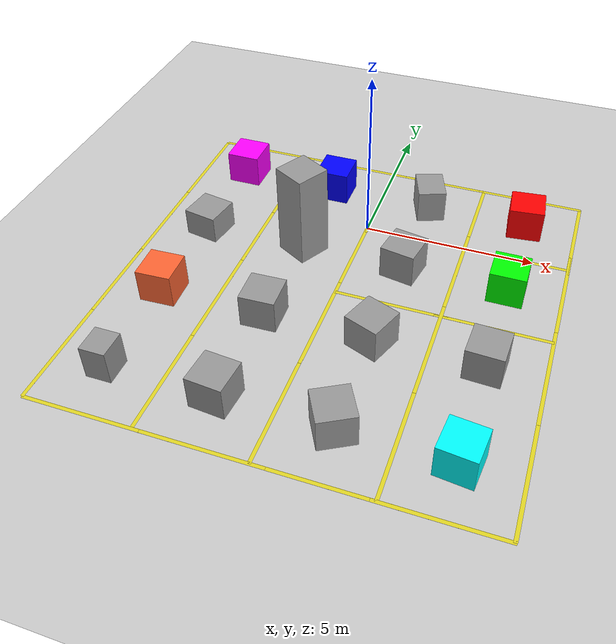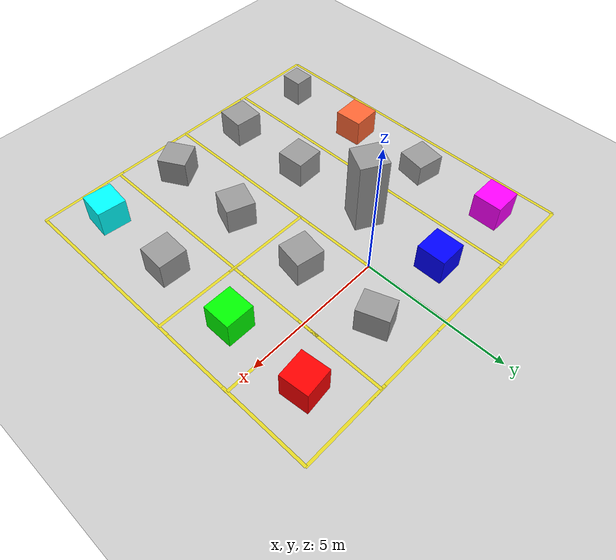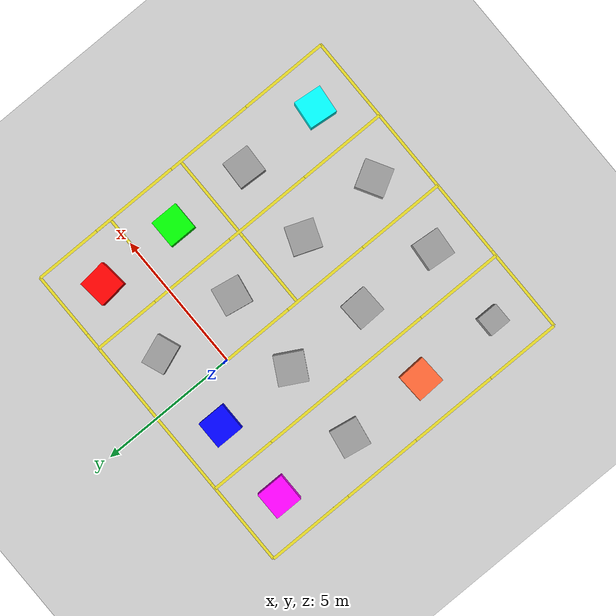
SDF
<sdf version="1.7">
 <world name="default">
  <light name="sun" type="directional">
   <pose>0 0 10 0 -0 0</pose>
   <diffuse>0.8 0.8 0.8 1</diffuse>
   <specular>0.2 0.2 0.2 1</specular>
   <attenuation>
    <range>1000</range>
    <constant>0.9</constant>
    <linear>0.01</linear>
    <quadratic>0.001</quadratic>
   </attenuation>
   <direction>-0.5 0.1 -0.9</direction>
   <spot><inner_angle>0</inner_angle><outer_angle>0</outer_angle><falloff>0</falloff></spot>
  </light>
  <model name="ground_plane">
   <static>1</static>
   <link name="link">
    <collision name="collision">
     <geometry><plane><normal>0 0 1</normal><size>100 100</size></plane></geometry>
     <surface>
      <contact><collide_bitmask>65535</collide_bitmask></contact>
      <friction><ode><mu>100</mu><mu2>50</mu2></ode></friction>
     </surface>
    </collision>
    <visual name="visual">
     <cast_shadows>0</cast_shadows>
     <geometry><plane><normal>0 0 1</normal><size>100 100</size></plane></geometry>
     <material>
      <script><uri>file://media/materials/scripts/gazebo.material</uri><name>Gazebo/Grey</name></script>
     </material>
    </visual>
   </link>
  </model>
  <gravity>0 0 -9.8</gravity>
  <magnetic_field>6e-06 2.3e-05 -4.2e-05</magnetic_field>
  <atmosphere type="adiabatic"/>
  <physics type="ode">
   <max_step_size>0.001</max_step_size>
   <real_time_factor>1</real_time_factor>
   <real_time_update_rate>1000</real_time_update_rate>
  </physics>
  <scene><ambient>0.4 0.4 0.4 1</ambient><background>0.7 0.7 0.7 1</background><shadows>1</shadows></scene>
  <spherical_coordinates>
   <surface_model>EARTH_WGS84</surface_model>
   <latitude_deg>0</latitude_deg>
   <longitude_deg>0</longitude_deg>
   <elevation>0</elevation>
   <heading_deg>0</heading_deg>
  </spherical_coordinates>
  <model name="C4">
   <link name="link_4">
    <inertial>
     <mass>100</mass>
     <inertia>
      <ixx>0.166667</ixx>
      <ixy>0</ixy>
      <ixz>0</ixz>
      <iyy>0.166667</iyy>
      <iyz>0</iyz>
      <izz>0.166667</izz>
     </inertia>
    </inertial>
    <visual name="visual">
     <geometry><box><size>0.999999 1 1</size></box></geometry>
     <material>
      <lighting>1</lighting>
      <script><uri>file://media/materials/scripts/gazebo.material</uri><name>Gazebo/Grey</name></script>
      <shader type="pixel"><normal_map>__default__</normal_map></shader>
      <ambient>0.3 0.3 0.3 1</ambient>
      <diffuse>0.7 0.7 0.7 1</diffuse>
      <specular>0.01 0.01 0.01 1</specular>
      <emissive>0 0 0 1</emissive>
     </material>
    </visual>
    <collision name="collision">
     <geometry><box><size>0.999999 1 1</size></box></geometry>
     <surface>
      <friction>
       <ode><mu>1</mu><mu2>1</mu2><fdir1>0 0 0</fdir1><slip1>0</slip1><slip2>0</slip2></ode>
       <torsional>
        <coefficient>1</coefficient>
        <patch_radius>0</patch_radius>
        <surface_radius>0</surface_radius>
        <use_patch_radius>1</use_patch_radius>
        <ode><slip>0</slip></ode>
       </torsional>
      </friction>
      <bounce><restitution_coefficient>0</restitution_coefficient><threshold>1e+06</threshold></bounce>
      <contact>
       <collide_without_contact>0</collide_without_contact>
       <collide_without_contact_bitmask>1</collide_without_contact_bitmask>
       <collide_bitmask>1</collide_bitmask>
       <ode>
        <soft_cfm>0</soft_cfm>
        <soft_erp>0.2</soft_erp>
        <kp>1e+13</kp>
        <kd>1</kd>
        <max_vel>0.01</max_vel>
        <min_depth>0</min_depth>
       </ode>
       <bullet>
        <split_impulse>1</split_impulse>
        <split_impulse_penetration_threshold>-0.01</split_impulse_penetration_threshold>
        <soft_cfm>0</soft_cfm>
        <soft_erp>0.2</soft_erp>
        <kp>1e+13</kp>
        <kd>1</kd>
       </bullet>
      </contact>
     </surface>
    </collision>
   </link>
   <static>0</static>
   <pose>-1.5 -7.5 0.499995 1e-05 0 -0.085177</pose>
  </model>
  <model name="D1">
   <link name="link_4">
    <inertial>
     <mass>100</mass>
     <inertia>
      <ixx>0.166667</ixx>
      <ixy>0</ixy>
      <ixz>0</ixz>
      <iyy>0.166667</iyy>
      <iyz>0</iyz>
      <izz>0.166667</izz>
     </inertia>
    </inertial>
    <visual name="visual">
     <geometry><box><size>0.999998 1 1</size></box></geometry>
     <material>
      <lighting>1</lighting>
      <script><uri>file://media/materials/scripts/gazebo.material</uri><name>Gazebo/Grey</name></script>
      <shader type="pixel"><normal_map>__default__</normal_map></shader>
      <ambient>1 0 1 0</ambient>
      <diffuse>0.7 0.7 0.7 1</diffuse>
      <specular>0.01 0.01 0.01 1</specular>
      <emissive>0 0 0 1</emissive>
     </material>
    </visual>
    <collision name="collision">
     <geometry><box><size>0.999998 1 1</size></box></geometry>
     <surface>
      <friction>
       <ode><mu>1</mu><mu2>1</mu2><fdir1>0 0 0</fdir1><slip1>0</slip1><slip2>0</slip2></ode>
       <torsional>
        <coefficient>1</coefficient>
        <patch_radius>0</patch_radius>
        <surface_radius>0</surface_radius>
        <use_patch_radius>1</use_patch_radius>
        <ode><slip>0</slip></ode>
       </torsional>
      </friction>
      <bounce><restitution_coefficient>0</restitution_coefficient><threshold>1e+06</threshold></bounce>
      <contact>
       <collide_without_contact>0</collide_without_contact>
       <collide_without_contact_bitmask>1</collide_without_contact_bitmask>
       <collide_bitmask>1</collide_bitmask>
       <ode>
        <soft_cfm>0</soft_cfm>
        <soft_erp>0.2</soft_erp>
        <kp>1e+13</kp>
        <kd>1</kd>
        <max_vel>0.01</max_vel>
        <min_depth>0</min_depth>
       </ode>
       <bullet>
        <split_impulse>1</split_impulse>
        <split_impulse_penetration_threshold>-0.01</split_impulse_penetration_threshold>
        <soft_cfm>0</soft_cfm>
        <soft_erp>0.2</soft_erp>
        <kp>1e+13</kp>
        <kd>1</kd>
       </bullet>
      </contact>
     </surface>
    </collision>
   </link>
   <static>0</static>
   <pose>-4.5 1.5 0.5 0 -0 0</pose>
  </model>
  <model name="D2">
   <link name="link_4">
    <inertial>
     <mass>100</mass>
     <inertia>
      <ixx>0.166667</ixx>
      <ixy>0</ixy>
      <ixz>0</ixz>
      <iyy>0.166667</iyy>
      <iyz>0</iyz>
      <izz>0.166667</izz>
     </inertia>
    </inertial>
    <visual name="visual">
     <geometry><box><size>0.999996 1 0.999998</size></box></geometry>
     <material>
      <lighting>1</lighting>
      <script><uri>file://media/materials/scripts/gazebo.material</uri><name>Gazebo/Grey</name></script>
      <shader type="pixel"><normal_map>__default__</normal_map></shader>
      <ambient>0.3 0.3 0.3 1</ambient>
      <diffuse>0.7 0.7 0.7 1</diffuse>
      <specular>0.01 0.01 0.01 1</specular>
      <emissive>0 0 0 1</emissive>
     </material>
    </visual>
    <collision name="collision">
     <geometry><box><size>0.999996 1 0.999998</size></box></geometry>
     <surface>
      <friction>
       <ode><mu>1</mu><mu2>1</mu2><fdir1>0 0 0</fdir1><slip1>0</slip1><slip2>0</slip2></ode>
       <torsional>
        <coefficient>1</coefficient>
        <patch_radius>0</patch_radius>
        <surface_radius>0</surface_radius>
        <use_patch_radius>1</use_patch_radius>
        <ode><slip>0</slip></ode>
       </torsional>
      </friction>
      <bounce><restitution_coefficient>0</restitution_coefficient><threshold>1e+06</threshold></bounce>
      <contact>
       <collide_without_contact>0</collide_without_contact>
       <collide_without_contact_bitmask>1</collide_without_contact_bitmask>
       <collide_bitmask>1</collide_bitmask>
       <ode>
        <soft_cfm>0</soft_cfm>
        <soft_erp>0.2</soft_erp>
        <kp>1e+13</kp>
        <kd>1</kd>
        <max_vel>0.01</max_vel>
        <min_depth>0</min_depth>
       </ode>
       <bullet>
        <split_impulse>1</split_impulse>
        <split_impulse_penetration_threshold>-0.01</split_impulse_penetration_threshold>
        <soft_cfm>0</soft_cfm>
        <soft_erp>0.2</soft_erp>
        <kp>1e+13</kp>
        <kd>1</kd>
       </bullet>
      </contact>
     </surface>
    </collision>
   </link>
   <static>0</static>
   <pose>-4.5 -1.5 0.310137 0 0 -0.174068</pose>
  </model>
  <model name="C3">
   <link name="link_4">
    <inertial>
     <mass>100</mass>
     <inertia>
      <ixx>0.166667</ixx>
      <ixy>0</ixy>
      <ixz>0</ixz>
      <iyy>0.166667</iyy>
      <iyz>0</iyz>
      <izz>0.166667</izz>
     </inertia>
    </inertial>
    <visual name="visual">
     <geometry><box><size>1 1 1</size></box></geometry>
     <material>
      <lighting>1</lighting>
      <script><uri>file://media/materials/scripts/gazebo.material</uri><name>Gazebo/Grey</name></script>
      <shader type="pixel"><normal_map>__default__</normal_map></shader>
      <ambient>0.3 0.3 0.3 1</ambient>
      <diffuse>0.7 0.7 0.7 1</diffuse>
      <specular>0.01 0.01 0.01 1</specular>
      <emissive>0 0 0 1</emissive>
     </material>
    </visual>
    <collision name="collision">
     <geometry><box><size>1 1 1</size></box></geometry>
     <surface>
      <friction>
       <ode><mu>1</mu><mu2>1</mu2><fdir1>0 0 0</fdir1><slip1>0</slip1><slip2>0</slip2></ode>
       <torsional>
        <coefficient>1</coefficient>
        <patch_radius>0</patch_radius>
        <surface_radius>0</surface_radius>
        <use_patch_radius>1</use_patch_radius>
        <ode><slip>0</slip></ode>
       </torsional>
      </friction>
      <bounce><restitution_coefficient>0</restitution_coefficient><threshold>1e+06</threshold></bounce>
      <contact>
       <collide_without_contact>0</collide_without_contact>
       <collide_without_contact_bitmask>1</collide_without_contact_bitmask>
       <collide_bitmask>1</collide_bitmask>
       <ode>
        <soft_cfm>0</soft_cfm>
        <soft_erp>0.2</soft_erp>
        <kp>1e+13</kp>
        <kd>1</kd>
        <max_vel>0.01</max_vel>
        <min_depth>0</min_depth>
       </ode>
       <bullet>
        <split_impulse>1</split_impulse>
        <split_impulse_penetration_threshold>-0.01</split_impulse_penetration_threshold>
        <soft_cfm>0</soft_cfm>
        <soft_erp>0.2</soft_erp>
        <kp>1e+13</kp>
        <kd>1</kd>
       </bullet>
      </contact>
     </surface>
    </collision>
   </link>
   <static>0</static>
   <pose>-1.5 -4.5 0.499995 8e-06 -0 0.03295</pose>
  </model>
  <model name="yellow line">
   <static>1</static>
   <link name="link_ground">
    <collision name="collision">
     <geometry><plane><normal>0 0 1</normal><size>0.1 3.2</size></plane></geometry>
     <surface><friction><ode><mu>100</mu><mu2>50</mu2></ode></friction></surface>
    </collision>
    <visual name="visual_ground">
     <cast_shadows>0</cast_shadows>
     <geometry><plane><normal>0 0 1</normal><size>0.1 3.2</size></plane></geometry>
     <material>
      <script><uri>file://media/materials/scripts/gazebo.material</uri><name>Gazebo/Yellow</name></script>
     </material>
    </visual>
   </link>
   <pose>-6 1.4 0.01 0 -0 0</pose>
  </model>
  <model name="yellow line_0">
   <static>1</static>
   <link name="link_ground">
    <collision name="collision">
     <geometry><plane><normal>0 0 1</normal><size>0.1 3.2</size></plane></geometry>
     <surface><friction><ode><mu>100</mu><mu2>50</mu2></ode></friction></surface>
    </collision>
    <visual name="visual_ground">
     <cast_shadows>0</cast_shadows>
     <geometry><plane><normal>0 0 1</normal><size>0.1 3.2</size></plane></geometry>
     <material>
      <script><uri>file://media/materials/scripts/gazebo.material</uri><name>Gazebo/Yellow</name></script>
     </material>
    </visual>
   </link>
   <pose>0 -1 0.01 0 -0 0</pose>
  </model>
  <model name="yellow line_1">
   <static>1</static>
   <link name="link_ground">
    <collision name="collision">
     <geometry><plane><normal>0 0 1</normal><size>0.1 3.2</size></plane></geometry>
     <surface><friction><ode><mu>100</mu><mu2>50</mu2></ode></friction></surface>
    </collision>
    <visual name="visual_ground">
     <cast_shadows>0</cast_shadows>
     <geometry><plane><normal>0 0 1</normal><size>0.1 3.2</size></plane></geometry>
     <material>
      <script><uri>file://media/materials/scripts/gazebo.material</uri><name>Gazebo/Yellow</name></script>
     </material>
    </visual>
   </link>
   <pose>-3 -1 0.01 0 -0 0</pose>
  </model>
  <model name="yellow line_2">
   <static>1</static>
   <link name="link_ground">
    <collision name="collision">
     <geometry><plane><normal>0 0 1</normal><size>0.1 3.2</size></plane></geometry>
     <surface><friction><ode><mu>100</mu><mu2>50</mu2></ode></friction></surface>
    </collision>
    <visual name="visual_ground">
     <cast_shadows>0</cast_shadows>
     <geometry><plane><normal>0 0 1</normal><size>0.1 3.2</size></plane></geometry>
     <material>
      <script><uri>file://media/materials/scripts/gazebo.material</uri><name>Gazebo/Yellow</name></script>
     </material>
    </visual>
   </link>
   <pose>3 -1 0.01 0 -0 0</pose>
  </model>
  <model name="yellow line_3">
   <static>1</static>
   <link name="link_ground">
    <collision name="collision">
     <geometry><plane><normal>0 0 1</normal><size>0.1 3.2</size></plane></geometry>
     <surface><friction><ode><mu>100</mu><mu2>50</mu2></ode></friction></surface>
    </collision>
    <visual name="visual_ground">
     <cast_shadows>0</cast_shadows>
     <geometry><plane><normal>0 0 1</normal><size>0.1 3.2</size></plane></geometry>
     <material>
      <script><uri>file://media/materials/scripts/gazebo.material</uri><name>Gazebo/Yellow</name></script>
     </material>
    </visual>
   </link>
   <pose>6.01526 -1 0.01 0 -0 0</pose>
  </model>
  <model name="yellow line_4">
   <static>1</static>
   <link name="link_ground">
    <collision name="collision">
     <geometry><plane><normal>0 0 1</normal><size>0.1 3.2</size></plane></geometry>
     <surface><friction><ode><mu>100</mu><mu2>50</mu2></ode></friction></surface>
    </collision>
    <visual name="visual_ground">
     <cast_shadows>0</cast_shadows>
     <geometry><plane><normal>0 0 1</normal><size>0.1 3.2</size></plane></geometry>
     <material>
      <script><uri>file://media/materials/scripts/gazebo.material</uri><name>Gazebo/Yellow</name></script>
     </material>
    </visual>
   </link>
   <pose>6.01004 -4.2 0.01 0 -0 0</pose>
  </model>
  <model name="yellow line_5">
   <static>1</static>
   <link name="link_ground">
    <collision name="collision">
     <geometry><plane><normal>0 0 1</normal><size>0.1 3.2</size></plane></geometry>
     <surface><friction><ode><mu>100</mu><mu2>50</mu2></ode></friction></surface>
    </collision>
    <visual name="visual_ground">
     <cast_shadows>0</cast_shadows>
     <geometry><plane><normal>0 0 1</normal><size>0.1 3.2</size></plane></geometry>
     <material>
      <script><uri>file://media/materials/scripts/gazebo.material</uri><name>Gazebo/Yellow</name></script>
     </material>
    </visual>
   </link>
   <pose>3 -4.2 0.01 0 -0 0</pose>
  </model>
  <model name="yellow line_6">
   <static>1</static>
   <link name="link_ground">
    <collision name="collision">
     <geometry><plane><normal>0 0 1</normal><size>0.1 3.2</size></plane></geometry>
     <surface><friction><ode><mu>100</mu><mu2>50</mu2></ode></friction></surface>
    </collision>
    <visual name="visual_ground">
     <cast_shadows>0</cast_shadows>
     <geometry><plane><normal>0 0 1</normal><size>0.1 3.2</size></plane></geometry>
     <material>
      <script><uri>file://media/materials/scripts/gazebo.material</uri><name>Gazebo/Yellow</name></script>
     </material>
    </visual>
   </link>
   <pose>0 -4.2 0.01 0 -0 0</pose>
  </model>
  <model name="yellow line_7">
   <static>1</static>
   <link name="link_ground">
    <collision name="collision">
     <geometry><plane><normal>0 0 1</normal><size>0.1 3.2</size></plane></geometry>
     <surface><friction><ode><mu>100</mu><mu2>50</mu2></ode></friction></surface>
    </collision>
    <visual name="visual_ground">
     <cast_shadows>0</cast_shadows>
     <geometry><plane><normal>0 0 1</normal><size>0.1 3.2</size></plane></geometry>
     <material>
      <script><uri>file://media/materials/scripts/gazebo.material</uri><name>Gazebo/Yellow</name></script>
     </material>
    </visual>
   </link>
   <pose>-3 -4.2 0.01 0 -0 0</pose>
  </model>
  <model name="yellow line_8">
   <static>1</static>
   <link name="link_ground">
    <collision name="collision">
     <geometry><plane><normal>0 0 1</normal><size>0.1 3.2</size></plane></geometry>
     <surface><friction><ode><mu>100</mu><mu2>50</mu2></ode></friction></surface>
    </collision>
    <visual name="visual_ground">
     <cast_shadows>0</cast_shadows>
     <geometry><plane><normal>0 0 1</normal><size>0.1 3.2</size></plane></geometry>
     <material>
      <script><uri>file://media/materials/scripts/gazebo.material</uri><name>Gazebo/Yellow</name></script>
     </material>
    </visual>
   </link>
   <pose>-6 -4.7 0.01 0 -0 0</pose>
  </model>
  <model name="yellow line_9">
   <static>1</static>
   <link name="link_ground">
    <collision name="collision">
     <geometry><plane><normal>0 0 1</normal><size>0.1 3.2</size></plane></geometry>
     <surface><friction><ode><mu>100</mu><mu2>50</mu2></ode></friction></surface>
    </collision>
    <visual name="visual_ground">
     <cast_shadows>0</cast_shadows>
     <geometry><plane><normal>0 0 1</normal><size>0.1 3.2</size></plane></geometry>
     <material>
      <script><uri>file://media/materials/scripts/gazebo.material</uri><name>Gazebo/Yellow</name></script>
     </material>
    </visual>
   </link>
   <pose>6.01227 -7.4 0.01 0 -0 0</pose>
  </model>
  <model name="yellow line_10">
   <static>1</static>
   <link name="link_ground">
    <collision name="collision">
     <geometry><plane><normal>0 0 1</normal><size>0.1 3.2</size></plane></geometry>
     <surface><friction><ode><mu>100</mu><mu2>50</mu2></ode></friction></surface>
    </collision>
    <visual name="visual_ground">
     <cast_shadows>0</cast_shadows>
     <geometry><plane><normal>0 0 1</normal><size>0.1 3.2</size></plane></geometry>
     <material>
      <script><uri>file://media/materials/scripts/gazebo.material</uri><name>Gazebo/Yellow</name></script>
     </material>
    </visual>
   </link>
   <pose>3 -7.4 0.01 0 -0 0</pose>
  </model>
  <model name="yellow line_11">
   <static>1</static>
   <link name="link_ground">
    <collision name="collision">
     <geometry><plane><normal>0 0 1</normal><size>0.1 3.2</size></plane></geometry>
     <surface><friction><ode><mu>100</mu><mu2>50</mu2></ode></friction></surface>
    </collision>
    <visual name="visual_ground">
     <cast_shadows>0</cast_shadows>
     <geometry><plane><normal>0 0 1</normal><size>0.1 3.2</size></plane></geometry>
     <material>
      <script><uri>file://media/materials/scripts/gazebo.material</uri><name>Gazebo/Yellow</name></script>
     </material>
    </visual>
   </link>
   <pose>0 -7.4 0.01 0 -0 0</pose>
  </model>
  <model name="yellow line_12">
   <static>1</static>
   <link name="link_ground">
    <collision name="collision">
     <geometry><plane><normal>0 0 1</normal><size>0.1 3.2</size></plane></geometry>
     <surface><friction><ode><mu>100</mu><mu2>50</mu2></ode></friction></surface>
    </collision>
    <visual name="visual_ground">
     <cast_shadows>0</cast_shadows>
     <geometry><plane><normal>0 0 1</normal><size>0.1 3.2</size></plane></geometry>
     <material>
      <script><uri>file://media/materials/scripts/gazebo.material</uri><name>Gazebo/Yellow</name></script>
     </material>
    </visual>
   </link>
   <pose>-3 -7.4 0.01 0 -0 0</pose>
  </model>
  <model name="yellow line_13">
   <static>1</static>
   <link name="link_ground">
    <collision name="collision">
     <geometry><plane><normal>0 0 1</normal><size>0.1 3.2</size></plane></geometry>
     <surface><friction><ode><mu>100</mu><mu2>50</mu2></ode></friction></surface>
    </collision>
    <visual name="visual_ground">
     <cast_shadows>0</cast_shadows>
     <geometry><plane><normal>0 0 1</normal><size>0.1 3.2</size></plane></geometry>
     <material>
      <script><uri>file://media/materials/scripts/gazebo.material</uri><name>Gazebo/Yellow</name></script>
     </material>
    </visual>
   </link>
   <pose>-6 -7.4 0.01 0 -0 0</pose>
  </model>
  <model name="yellow line_14">
   <static>1</static>
   <link name="link_ground">
    <collision name="collision">
     <geometry><plane><normal>0 0 1</normal><size>0.1 3.2</size></plane></geometry>
     <surface><friction><ode><mu>100</mu><mu2>50</mu2></ode></friction></surface>
    </collision>
    <visual name="visual_ground">
     <cast_shadows>0</cast_shadows>
     <geometry><plane><normal>0 0 1</normal><size>0.1 3.2</size></plane></geometry>
     <material>
      <script><uri>file://media/materials/scripts/gazebo.material</uri><name>Gazebo/Yellow</name></script>
     </material>
    </visual>
   </link>
   <pose>-6 -1.7 0.01 0 -0 0</pose>
  </model>
  <model name="yellow line_15">
   <static>1</static>
   <link name="link_ground">
    <collision name="collision">
     <geometry><plane><normal>0 0 1</normal><size>0.1 3.2</size></plane></geometry>
     <surface><friction><ode><mu>100</mu><mu2>50</mu2></ode></friction></surface>
    </collision>
    <visual name="visual_ground">
     <cast_shadows>0</cast_shadows>
     <geometry><plane><normal>0 0 1</normal><size>0.1 3.2</size></plane></geometry>
     <material>
      <script><uri>file://media/materials/scripts/gazebo.material</uri><name>Gazebo/Yellow</name></script>
     </material>
    </visual>
   </link>
   <pose>-3 1.4 0.01 0 -0 0</pose>
  </model>
  <model name="yellow line_16">
   <static>1</static>
   <link name="link_ground">
    <collision name="collision">
     <geometry><plane><normal>0 0 1</normal><size>0.1 3.2</size></plane></geometry>
     <surface><friction><ode><mu>100</mu><mu2>50</mu2></ode></friction></surface>
    </collision>
    <visual name="visual_ground">
     <cast_shadows>0</cast_shadows>
     <geometry><plane><normal>0 0 1</normal><size>0.1 3.2</size></plane></geometry>
     <material>
      <script><uri>file://media/materials/scripts/gazebo.material</uri><name>Gazebo/Yellow</name></script>
     </material>
    </visual>
   </link>
   <pose>0 1.4 0.01 0 -0 0</pose>
  </model>
  <model name="yellow line_17">
   <static>1</static>
   <link name="link_ground">
    <collision name="collision">
     <geometry><plane><normal>0 0 1</normal><size>0.1 3.2</size></plane></geometry>
     <surface><friction><ode><mu>100</mu><mu2>50</mu2></ode></friction></surface>
    </collision>
    <visual name="visual_ground">
     <cast_shadows>0</cast_shadows>
     <geometry><plane><normal>0 0 1</normal><size>0.1 3.2</size></plane></geometry>
     <material>
      <script><uri>file://media/materials/scripts/gazebo.material</uri><name>Gazebo/Yellow</name></script>
     </material>
    </visual>
   </link>
   <pose>3 1.4 0.01 0 -0 0</pose>
  </model>
  <model name="yellow line_18">
   <static>1</static>
   <link name="link_ground">
    <collision name="collision">
     <geometry><plane><normal>0 0 1</normal><size>0.1 3.2</size></plane></geometry>
     <surface><friction><ode><mu>100</mu><mu2>50</mu2></ode></friction></surface>
    </collision>
    <visual name="visual_ground">
     <cast_shadows>0</cast_shadows>
     <geometry><plane><normal>0 0 1</normal><size>0.1 3.2</size></plane></geometry>
     <material>
      <script><uri>file://media/materials/scripts/gazebo.material</uri><name>Gazebo/Yellow</name></script>
     </material>
    </visual>
   </link>
   <pose>6.01258 1.40322 0.01 0 -0 0</pose>
  </model>
  <model name="yellow line_19">
   <static>1</static>
   <link name="link_ground">
    <collision name="collision">
     <geometry><plane><normal>0 0 1</normal><size>0.1 3.2</size></plane></geometry>
     <surface><friction><ode><mu>100</mu><mu2>50</mu2></ode></friction></surface>
    </collision>
    <visual name="visual_ground">
     <cast_shadows>0</cast_shadows>
     <geometry><plane><normal>0 0 1</normal><size>0.1 3.2</size></plane></geometry>
     <material>
      <script><uri>file://media/materials/scripts/gazebo.material</uri><name>Gazebo/Yellow</name></script>
     </material>
    </visual>
   </link>
   <pose>-4.4 -9 0.01 0 -0 1.571</pose>
  </model>
  <model name="yellow line_20">
   <static>1</static>
   <link name="link_ground">
    <collision name="collision">
     <geometry><plane><normal>0 0 1</normal><size>0.1 3.2</size></plane></geometry>
     <surface><friction><ode><mu>100</mu><mu2>50</mu2></ode></friction></surface>
    </collision>
    <visual name="visual_ground">
     <cast_shadows>0</cast_shadows>
     <geometry><plane><normal>0 0 1</normal><size>0.1 3.2</size></plane></geometry>
     <material>
      <script><uri>file://media/materials/scripts/gazebo.material</uri><name>Gazebo/Yellow</name></script>
     </material>
    </visual>
   </link>
   <pose>-1.2 -9 0.01 0 -0 1.571</pose>
  </model>
  <model name="yellow line_21">
   <static>1</static>
   <link name="link_ground">
    <collision name="collision">
     <geometry><plane><normal>0 0 1</normal><size>0.1 3.2</size></plane></geometry>
     <surface><friction><ode><mu>100</mu><mu2>50</mu2></ode></friction></surface>
    </collision>
    <visual name="visual_ground">
     <cast_shadows>0</cast_shadows>
     <geometry><plane><normal>0 0 1</normal><size>0.1 3.2</size></plane></geometry>
     <material>
      <script><uri>file://media/materials/scripts/gazebo.material</uri><name>Gazebo/Yellow</name></script>
     </material>
    </visual>
   </link>
   <pose>2 -9 0.01 0 -0 1.571</pose>
  </model>
  <model name="yellow line_22">
   <static>1</static>
   <link name="link_ground">
    <collision name="collision">
     <geometry><plane><normal>0 0 1</normal><size>0.1 3.2</size></plane></geometry>
     <surface><friction><ode><mu>100</mu><mu2>50</mu2></ode></friction></surface>
    </collision>
    <visual name="visual_ground">
     <cast_shadows>0</cast_shadows>
     <geometry><plane><normal>0 0 1</normal><size>0.1 3.2</size></plane></geometry>
     <material>
      <script><uri>file://media/materials/scripts/gazebo.material</uri><name>Gazebo/Yellow</name></script>
     </material>
    </visual>
   </link>
   <pose>4.45 -9 0.01 0 -0 1.571</pose>
  </model>
  <model name="yellow line_23">
   <static>1</static>
   <link name="link_ground">
    <collision name="collision">
     <geometry><plane><normal>0 0 1</normal><size>0.1 3.2</size></plane></geometry>
     <surface><friction><ode><mu>100</mu><mu2>50</mu2></ode></friction></surface>
    </collision>
    <visual name="visual_ground">
     <cast_shadows>0</cast_shadows>
     <geometry><plane><normal>0 0 1</normal><size>0.1 3.2</size></plane></geometry>
     <material>
      <script><uri>file://media/materials/scripts/gazebo.material</uri><name>Gazebo/Yellow</name></script>
     </material>
    </visual>
   </link>
   <pose>-4.4 3 0.01 0 -0 1.571</pose>
  </model>
  <model name="yellow line_24">
   <static>1</static>
   <link name="link_ground">
    <collision name="collision">
     <geometry><plane><normal>0 0 1</normal><size>0.1 3.2</size></plane></geometry>
     <surface><friction><ode><mu>100</mu><mu2>50</mu2></ode></friction></surface>
    </collision>
    <visual name="visual_ground">
     <cast_shadows>0</cast_shadows>
     <geometry><plane><normal>0 0 1</normal><size>0.1 3.2</size></plane></geometry>
     <material>
      <script><uri>file://media/materials/scripts/gazebo.material</uri><name>Gazebo/Yellow</name></script>
     </material>
    </visual>
   </link>
   <pose>-1.2 3 0.01 0 -0 1.571</pose>
  </model>
  <model name="yellow line_25">
   <static>1</static>
   <link name="link_ground">
    <collision name="collision">
     <geometry><plane><normal>0 0 1</normal><size>0.1 3.2</size></plane></geometry>
     <surface><friction><ode><mu>100</mu><mu2>50</mu2></ode></friction></surface>
    </collision>
    <visual name="visual_ground">
     <cast_shadows>0</cast_shadows>
     <geometry><plane><normal>0 0 1</normal><size>0.1 3.2</size></plane></geometry>
     <material>
      <script><uri>file://media/materials/scripts/gazebo.material</uri><name>Gazebo/Yellow</name></script>
     </material>
    </visual>
   </link>
   <pose>2 3 0.01 0 -0 1.571</pose>
  </model>
  <model name="yellow line_26">
   <static>1</static>
   <link name="link_ground">
    <collision name="collision">
     <geometry><plane><normal>0 0 1</normal><size>0.1 3.2</size></plane></geometry>
     <surface><friction><ode><mu>100</mu><mu2>50</mu2></ode></friction></surface>
    </collision>
    <visual name="visual_ground">
     <cast_shadows>0</cast_shadows>
     <geometry><plane><normal>0 0 1</normal><size>0.1 3.2</size></plane></geometry>
     <material>
      <script><uri>file://media/materials/scripts/gazebo.material</uri><name>Gazebo/Yellow</name></script>
     </material>
    </visual>
   </link>
   <pose>4.43773 3 0.01 0 -0 1.571</pose>
  </model>
  <model name="yellow line_27">
   <static>1</static>
   <link name="link_ground">
    <collision name="collision">
     <geometry><plane><normal>0 0 1</normal><size>0.1 3.2</size></plane></geometry>
     <surface><friction><ode><mu>100</mu><mu2>50</mu2></ode></friction></surface>
    </collision>
    <visual name="visual_ground">
     <cast_shadows>0</cast_shadows>
     <geometry><plane><normal>0 0 1</normal><size>0.1 3.2</size></plane></geometry>
     <material>
      <script><uri>file://media/materials/scripts/gazebo.material</uri><name>Gazebo/Yellow</name></script>
     </material>
    </visual>
   </link>
   <pose>4.4 0 0.01 0 -0 1.571</pose>
  </model>
  <model name="yellow line_28">
   <static>1</static>
   <link name="link_ground">
    <collision name="collision">
     <geometry><plane><normal>0 0 1</normal><size>0.1 3.2</size></plane></geometry>
     <surface><friction><ode><mu>100</mu><mu2>50</mu2></ode></friction></surface>
    </collision>
    <visual name="visual_ground">
     <cast_shadows>0</cast_shadows>
     <geometry><plane><normal>0 0 1</normal><size>0.1 3.2</size></plane></geometry>
     <material>
      <script><uri>file://media/materials/scripts/gazebo.material</uri><name>Gazebo/Yellow</name></script>
     </material>
    </visual>
   </link>
   <pose>1.6 0 0.01 0 -0 1.571</pose>
  </model>
  <model name="yellow line_29">
   <static>1</static>
   <link name="link_ground">
    <collision name="collision">
     <geometry><plane><normal>0 0 1</normal><size>0.1 3.2</size></plane></geometry>
     <surface><friction><ode><mu>100</mu><mu2>50</mu2></ode></friction></surface>
    </collision>
    <visual name="visual_ground">
     <cast_shadows>0</cast_shadows>
     <geometry><plane><normal>0 0 1</normal><size>0.1 3.2</size></plane></geometry>
     <material>
      <script><uri>file://media/materials/scripts/gazebo.material</uri><name>Gazebo/Yellow</name></script>
     </material>
    </visual>
   </link>
   <pose>4.4126 -3 0.01 0 -0 1.571</pose>
  </model>
  <model name="yellow line_30">
   <static>1</static>
   <link name="link_ground">
    <collision name="collision">
     <geometry><plane><normal>0 0 1</normal><size>0.1 3.2</size></plane></geometry>
     <surface><friction><ode><mu>100</mu><mu2>50</mu2></ode></friction></surface>
    </collision>
    <visual name="visual_ground">
     <cast_shadows>0</cast_shadows>
     <geometry><plane><normal>0 0 1</normal><size>0.1 3.2</size></plane></geometry>
     <material>
      <script><uri>file://media/materials/scripts/gazebo.material</uri><name>Gazebo/Yellow</name></script>
     </material>
    </visual>
   </link>
   <pose>1.6 -3 0.01 0 -0 1.571</pose>
  </model>
  <model name="C1_0">
   <link name="link_4">
    <inertial>
     <mass>100</mass>
     <inertia>
      <ixx>0.166667</ixx>
      <ixy>0</ixy>
      <ixz>0</ixz>
      <iyy>0.166667</iyy>
      <iyz>0</iyz>
      <izz>0.166667</izz>
     </inertia>
    </inertial>
    <visual name="visual">
     <geometry><box><size>1 1 1</size></box></geometry>
     <material>
      <lighting>1</lighting>
      <script><uri>file://media/materials/scripts/gazebo.material</uri><name>Gazebo/Grey</name></script>
      <shader type="pixel"><normal_map>__default__</normal_map></shader>
      <ambient>0 0 1 0</ambient>
      <diffuse>0.7 0.7 0.7 1</diffuse>
      <specular>0.01 0.01 0.01 1</specular>
      <emissive>0 0 0 1</emissive>
     </material>
    </visual>
    <collision name="collision">
     <geometry><box><size>1 1 1</size></box></geometry>
     <surface>
      <friction>
       <ode><mu>1</mu><mu2>1</mu2><fdir1>0 0 0</fdir1><slip1>0</slip1><slip2>0</slip2></ode>
       <torsional>
        <coefficient>1</coefficient>
        <patch_radius>0</patch_radius>
        <surface_radius>0</surface_radius>
        <use_patch_radius>1</use_patch_radius>
        <ode><slip>0</slip></ode>
       </torsional>
      </friction>
      <bounce><restitution_coefficient>0</restitution_coefficient><threshold>1e+06</threshold></bounce>
      <contact>
       <collide_without_contact>0</collide_without_contact>
       <collide_without_contact_bitmask>1</collide_without_contact_bitmask>
       <collide_bitmask>1</collide_bitmask>
       <ode>
        <soft_cfm>0</soft_cfm>
        <soft_erp>0.2</soft_erp>
        <kp>1e+13</kp>
        <kd>1</kd>
        <max_vel>0.01</max_vel>
        <min_depth>0</min_depth>
       </ode>
       <bullet>
        <split_impulse>1</split_impulse>
        <split_impulse_penetration_threshold>-0.01</split_impulse_penetration_threshold>
        <soft_cfm>0</soft_cfm>
        <soft_erp>0.2</soft_erp>
        <kp>1e+13</kp>
        <kd>1</kd>
       </bullet>
      </contact>
     </surface>
    </collision>
   </link>
   <static>1</static>
   <pose>-1.5 1.5 0.5 0 -0 0</pose>
  </model>
  <model name="B2_0">
   <link name="link_4">
    <inertial>
     <mass>100</mass>
     <inertia>
      <ixx>0.166667</ixx>
      <ixy>0</ixy>
      <ixz>0</ixz>
      <iyy>0.166667</iyy>
      <iyz>0</iyz>
      <izz>0.166667</izz>
     </inertia>
    </inertial>
    <visual name="visual">
     <geometry><box><size>1 1 1</size></box></geometry>
     <material>
      <lighting>1</lighting>
      <script><uri>file://media/materials/scripts/gazebo.material</uri><name>Gazebo/Grey</name></script>
      <shader type="pixel"><normal_map>__default__</normal_map></shader>
      <ambient>0.3 0.3 0.3 1</ambient>
      <diffuse>0.7 0.7 0.7 1</diffuse>
      <specular>0.01 0.01 0.01 1</specular>
      <emissive>0 0 0 1</emissive>
     </material>
    </visual>
    <collision name="collision">
     <geometry><box><size>1 1 1</size></box></geometry>
     <surface>
      <friction>
       <ode><mu>1</mu><mu2>1</mu2><fdir1>0 0 0</fdir1><slip1>0</slip1><slip2>0</slip2></ode>
       <torsional>
        <coefficient>1</coefficient>
        <patch_radius>0</patch_radius>
        <surface_radius>0</surface_radius>
        <use_patch_radius>1</use_patch_radius>
        <ode><slip>0</slip></ode>
       </torsional>
      </friction>
      <bounce><restitution_coefficient>0</restitution_coefficient><threshold>1e+06</threshold></bounce>
      <contact>
       <collide_without_contact>0</collide_without_contact>
       <collide_without_contact_bitmask>1</collide_without_contact_bitmask>
       <collide_bitmask>1</collide_bitmask>
       <ode>
        <soft_cfm>0</soft_cfm>
        <soft_erp>0.2</soft_erp>
        <kp>1e+13</kp>
        <kd>1</kd>
        <max_vel>0.01</max_vel>
        <min_depth>0</min_depth>
       </ode>
       <bullet>
        <split_impulse>1</split_impulse>
        <split_impulse_penetration_threshold>-0.01</split_impulse_penetration_threshold>
        <soft_cfm>0</soft_cfm>
        <soft_erp>0.2</soft_erp>
        <kp>1e+13</kp>
        <kd>1</kd>
       </bullet>
      </contact>
     </surface>
    </collision>
   </link>
   <static>1</static>
   <pose>1.52466 -1.5 0.5 0 0 -0.175432</pose>
  </model>
  <model name="A1">
   <link name="link_4">
    <inertial>
     <mass>100</mass>
     <inertia>
      <ixx>0.166667</ixx>
      <ixy>0</ixy>
      <ixz>0</ixz>
      <iyy>0.166667</iyy>
      <iyz>0</iyz>
      <izz>0.166667</izz>
     </inertia>
    </inertial>
    <visual name="visual">
     <geometry><box><size>1 1 1</size></box></geometry>
     <material>
      <lighting>1</lighting>
      <script><uri>file://media/materials/scripts/gazebo.material</uri><name>Gazebo/Grey</name></script>
      <shader type="pixel"><normal_map>__default__</normal_map></shader>
      <ambient>1 0 0 0</ambient>
      <diffuse>0.7 0.7 0.7 1</diffuse>
      <specular>0.01 0.01 0.01 1</specular>
      <emissive>0 0 0 1</emissive>
     </material>
    </visual>
    <collision name="collision">
     <geometry><box><size>1 1 1</size></box></geometry>
     <surface>
      <friction>
       <ode><mu>1</mu><mu2>1</mu2><fdir1>0 0 0</fdir1><slip1>0</slip1><slip2>0</slip2></ode>
       <torsional>
        <coefficient>1</coefficient>
        <patch_radius>0</patch_radius>
        <surface_radius>0</surface_radius>
        <use_patch_radius>1</use_patch_radius>
        <ode><slip>0</slip></ode>
       </torsional>
      </friction>
      <bounce><restitution_coefficient>0</restitution_coefficient><threshold>1e+06</threshold></bounce>
      <contact>
       <collide_without_contact>0</collide_without_contact>
       <collide_without_contact_bitmask>1</collide_without_contact_bitmask>
       <collide_bitmask>1</collide_bitmask>
       <ode>
        <soft_cfm>0</soft_cfm>
        <soft_erp>0.2</soft_erp>
        <kp>1e+13</kp>
        <kd>1</kd>
        <max_vel>0.01</max_vel>
        <min_depth>0</min_depth>
       </ode>
       <bullet>
        <split_impulse>1</split_impulse>
        <split_impulse_penetration_threshold>-0.01</split_impulse_penetration_threshold>
        <soft_cfm>0</soft_cfm>
        <soft_erp>0.2</soft_erp>
        <kp>1e+13</kp>
        <kd>1</kd>
       </bullet>
      </contact>
     </surface>
    </collision>
   </link>
   <static>1</static>
   <pose>4.5 1.5 0.499995 1e-05 -1e-06 0.103985</pose>
  </model>
  <model name="A2">
   <link name="link_4">
    <inertial>
     <mass>100</mass>
     <inertia>
      <ixx>0.166667</ixx>
      <ixy>0</ixy>
      <ixz>0</ixz>
      <iyy>0.166667</iyy>
      <iyz>0</iyz>
      <izz>0.166667</izz>
     </inertia>
    </inertial>
    <visual name="visual">
     <geometry><box><size>1 0.999999 1</size></box></geometry>
     <material>
      <lighting>1</lighting>
      <script><uri>file://media/materials/scripts/gazebo.material</uri><name>Gazebo/Grey</name></script>
      <shader type="pixel"><normal_map>__default__</normal_map></shader>
      <ambient>0 1 0 0</ambient>
      <diffuse>0.7 0.7 0.7 1</diffuse>
      <specular>0.01 0.01 0.01 1</specular>
      <emissive>0 0 0 1</emissive>
     </material>
    </visual>
    <collision name="collision">
     <geometry><box><size>1 0.999999 1</size></box></geometry>
     <surface>
      <friction>
       <ode><mu>1</mu><mu2>1</mu2><fdir1>0 0 0</fdir1><slip1>0</slip1><slip2>0</slip2></ode>
       <torsional>
        <coefficient>1</coefficient>
        <patch_radius>0</patch_radius>
        <surface_radius>0</surface_radius>
        <use_patch_radius>1</use_patch_radius>
        <ode><slip>0</slip></ode>
       </torsional>
      </friction>
      <bounce><restitution_coefficient>0</restitution_coefficient><threshold>1e+06</threshold></bounce>
      <contact>
       <collide_without_contact>0</collide_without_contact>
       <collide_without_contact_bitmask>1</collide_without_contact_bitmask>
       <collide_bitmask>1</collide_bitmask>
       <ode>
        <soft_cfm>0</soft_cfm>
        <soft_erp>0.2</soft_erp>
        <kp>1e+13</kp>
        <kd>1</kd>
        <max_vel>0.01</max_vel>
        <min_depth>0</min_depth>
       </ode>
       <bullet>
        <split_impulse>1</split_impulse>
        <split_impulse_penetration_threshold>-0.01</split_impulse_penetration_threshold>
        <soft_cfm>0</soft_cfm>
        <soft_erp>0.2</soft_erp>
        <kp>1e+13</kp>
        <kd>1</kd>
       </bullet>
      </contact>
     </surface>
    </collision>
   </link>
   <static>1</static>
   <pose>4.5 -1.5 0.499995 1e-05 -0 0</pose>
  </model>
  <model name="A4">
   <link name="link_4">
    <inertial>
     <mass>100</mass>
     <inertia>
      <ixx>0.166667</ixx>
      <ixy>0</ixy>
      <ixz>0</ixz>
      <iyy>0.166667</iyy>
      <iyz>0</iyz>
      <izz>0.166667</izz>
     </inertia>
    </inertial>
    <visual name="visual">
     <geometry><box><size>1 1 1</size></box></geometry>
     <material>
      <lighting>1</lighting>
      <script><uri>file://media/materials/scripts/gazebo.material</uri><name>Gazebo/Grey</name></script>
      <shader type="pixel"><normal_map>__default__</normal_map></shader>
      <ambient>0 1 1 0</ambient>
      <diffuse>0.7 0.7 0.7 1</diffuse>
      <specular>0.01 0.01 0.01 1</specular>
      <emissive>0 0 0 1</emissive>
     </material>
    </visual>
    <collision name="collision">
     <geometry><box><size>1 1 1</size></box></geometry>
     <surface>
      <friction>
       <ode><mu>1</mu><mu2>1</mu2><fdir1>0 0 0</fdir1><slip1>0</slip1><slip2>0</slip2></ode>
       <torsional>
        <coefficient>1</coefficient>
        <patch_radius>0</patch_radius>
        <surface_radius>0</surface_radius>
        <use_patch_radius>1</use_patch_radius>
        <ode><slip>0</slip></ode>
       </torsional>
      </friction>
      <bounce><restitution_coefficient>0</restitution_coefficient><threshold>1e+06</threshold></bounce>
      <contact>
       <collide_without_contact>0</collide_without_contact>
       <collide_without_contact_bitmask>1</collide_without_contact_bitmask>
       <collide_bitmask>1</collide_bitmask>
       <ode>
        <soft_cfm>0</soft_cfm>
        <soft_erp>0.2</soft_erp>
        <kp>1e+13</kp>
        <kd>1</kd>
        <max_vel>0.01</max_vel>
        <min_depth>0</min_depth>
       </ode>
       <bullet>
        <split_impulse>1</split_impulse>
        <split_impulse_penetration_threshold>-0.01</split_impulse_penetration_threshold>
        <soft_cfm>0</soft_cfm>
        <soft_erp>0.2</soft_erp>
        <kp>1e+13</kp>
        <kd>1</kd>
       </bullet>
      </contact>
     </surface>
    </collision>
   </link>
   <static>1</static>
   <pose>4.5 -7.5 0.499995 1e-05 1e-06 -0.1048</pose>
  </model>
  <model name="B3">
   <link name="link_4">
    <inertial>
     <mass>100</mass>
     <inertia>
      <ixx>0.166667</ixx>
      <ixy>0</ixy>
      <ixz>0</ixz>
      <iyy>0.166667</iyy>
      <iyz>0</iyz>
      <izz>0.166667</izz>
     </inertia>
    </inertial>
    <visual name="visual">
     <geometry><box><size>1 1 1</size></box></geometry>
     <material>
      <lighting>1</lighting>
      <script><uri>file://media/materials/scripts/gazebo.material</uri><name>Gazebo/Grey</name></script>
      <shader type="pixel"><normal_map>__default__</normal_map></shader>
      <ambient>0.3 0.3 0.3 1</ambient>
      <diffuse>0.7 0.7 0.7 1</diffuse>
      <specular>0.01 0.01 0.01 1</specular>
      <emissive>0 0 0 1</emissive>
     </material>
    </visual>
    <collision name="collision">
     <geometry><box><size>1 1 1</size></box></geometry>
     <surface>
      <friction>
       <ode><mu>1</mu><mu2>1</mu2><fdir1>0 0 0</fdir1><slip1>0</slip1><slip2>0</slip2></ode>
       <torsional>
        <coefficient>1</coefficient>
        <patch_radius>0</patch_radius>
        <surface_radius>0</surface_radius>
        <use_patch_radius>1</use_patch_radius>
        <ode><slip>0</slip></ode>
       </torsional>
      </friction>
      <bounce><restitution_coefficient>0</restitution_coefficient><threshold>1e+06</threshold></bounce>
      <contact>
       <collide_without_contact>0</collide_without_contact>
       <collide_without_contact_bitmask>1</collide_without_contact_bitmask>
       <collide_bitmask>1</collide_bitmask>
       <ode>
        <soft_cfm>0</soft_cfm>
        <soft_erp>0.2</soft_erp>
        <kp>1e+13</kp>
        <kd>1</kd>
        <max_vel>0.01</max_vel>
        <min_depth>0</min_depth>
       </ode>
       <bullet>
        <split_impulse>1</split_impulse>
        <split_impulse_penetration_threshold>-0.01</split_impulse_penetration_threshold>
        <soft_cfm>0</soft_cfm>
        <soft_erp>0.2</soft_erp>
        <kp>1e+13</kp>
        <kd>1</kd>
       </bullet>
      </contact>
     </surface>
    </collision>
   </link>
   <static>1</static>
   <pose>1.5 -4.5 0.499985 4e-06 -9e-06 1.20772</pose>
  </model>
  <model name="B4">
   <link name="link_4">
    <inertial>
     <mass>100</mass>
     <inertia>
      <ixx>0.166667</ixx>
      <ixy>0</ixy>
      <ixz>0</ixz>
      <iyy>0.166667</iyy>
      <iyz>0</iyz>
      <izz>0.166667</izz>
     </inertia>
    </inertial>
    <visual name="visual">
     <geometry><box><size>1 0.999999 1</size></box></geometry>
     <material>
      <lighting>1</lighting>
      <script><uri>file://media/materials/scripts/gazebo.material</uri><name>Gazebo/Grey</name></script>
      <shader type="pixel"><normal_map>__default__</normal_map></shader>
      <ambient>0.3 0.3 0.3 1</ambient>
      <diffuse>0.7 0.7 0.7 1</diffuse>
      <specular>0.01 0.01 0.01 1</specular>
      <emissive>0 0 0 1</emissive>
     </material>
    </visual>
    <collision name="collision">
     <geometry><box><size>1 0.999999 1</size></box></geometry>
     <surface>
      <friction>
       <ode><mu>1</mu><mu2>1</mu2><fdir1>0 0 0</fdir1><slip1>0</slip1><slip2>0</slip2></ode>
       <torsional>
        <coefficient>1</coefficient>
        <patch_radius>0</patch_radius>
        <surface_radius>0</surface_radius>
        <use_patch_radius>1</use_patch_radius>
        <ode><slip>0</slip></ode>
       </torsional>
      </friction>
      <bounce><restitution_coefficient>0</restitution_coefficient><threshold>1e+06</threshold></bounce>
      <contact>
       <collide_without_contact>0</collide_without_contact>
       <collide_without_contact_bitmask>1</collide_without_contact_bitmask>
       <collide_bitmask>1</collide_bitmask>
       <ode>
        <soft_cfm>0</soft_cfm>
        <soft_erp>0.2</soft_erp>
        <kp>1e+13</kp>
        <kd>1</kd>
        <max_vel>0.01</max_vel>
        <min_depth>0</min_depth>
       </ode>
       <bullet>
        <split_impulse>1</split_impulse>
        <split_impulse_penetration_threshold>-0.01</split_impulse_penetration_threshold>
        <soft_cfm>0</soft_cfm>
        <soft_erp>0.2</soft_erp>
        <kp>1e+13</kp>
        <kd>1</kd>
       </bullet>
      </contact>
     </surface>
    </collision>
   </link>
   <static>1</static>
   <pose>1.5 -7.5 0.499995 9e-06 -5e-06 0.513526</pose>
  </model>
  <model name="D3_0">
   <link name="link_4">
    <inertial>
     <mass>100</mass>
     <inertia>
      <ixx>0.166667</ixx>
      <ixy>0</ixy>
      <ixz>0</ixz>
      <iyy>0.166667</iyy>
      <iyz>0</iyz>
      <izz>0.166667</izz>
     </inertia>
    </inertial>
    <visual name="visual">
     <geometry><box><size>1 1 1</size></box></geometry>
     <material>
      <lighting>1</lighting>
      <script><uri>file://media/materials/scripts/gazebo.material</uri><name>Gazebo/Grey</name></script>
      <shader type="pixel"><normal_map>__default__</normal_map></shader>
      <ambient>1 0.4 0.2 0</ambient>
      <diffuse>0.7 0.7 0.7 1</diffuse>
      <specular>0.01 0.01 0.01 1</specular>
      <emissive>0 0 0 1</emissive>
     </material>
    </visual>
    <collision name="collision">
     <geometry><box><size>1 1 1</size></box></geometry>
     <surface>
      <friction>
       <ode><mu>1</mu><mu2>1</mu2><fdir1>0 0 0</fdir1><slip1>0</slip1><slip2>0</slip2></ode>
       <torsional>
        <coefficient>1</coefficient>
        <patch_radius>0</patch_radius>
        <surface_radius>0</surface_radius>
        <use_patch_radius>1</use_patch_radius>
        <ode><slip>0</slip></ode>
       </torsional>
      </friction>
      <bounce><restitution_coefficient>0</restitution_coefficient><threshold>1e+06</threshold></bounce>
      <contact>
       <collide_without_contact>0</collide_without_contact>
       <collide_without_contact_bitmask>1</collide_without_contact_bitmask>
       <collide_bitmask>1</collide_bitmask>
       <ode>
        <soft_cfm>0</soft_cfm>
        <soft_erp>0.2</soft_erp>
        <kp>1e+13</kp>
        <kd>1</kd>
        <max_vel>0.01</max_vel>
        <min_depth>0</min_depth>
       </ode>
       <bullet>
        <split_impulse>1</split_impulse>
        <split_impulse_penetration_threshold>-0.01</split_impulse_penetration_threshold>
        <soft_cfm>0</soft_cfm>
        <soft_erp>0.2</soft_erp>
        <kp>1e+13</kp>
        <kd>1</kd>
       </bullet>
      </contact>
     </surface>
    </collision>
   </link>
   <static>1</static>
   <pose>-4.5 -4.5 0.5 0 -0 0.042518</pose>
  </model>
  <model name="unit_box">
   <pose>1.5302 1.50424 0.5 0 -0 0.355402</pose>
   <link name="link">
    <inertial>
     <mass>100</mass>
     <inertia>
      <ixx>0.166667</ixx>
      <ixy>0</ixy>
      <ixz>0</ixz>
      <iyy>0.166667</iyy>
      <iyz>0</iyz>
      <izz>0.166667</izz>
     </inertia>
    </inertial>
    <collision name="collision"><geometry><box><size>0.822948 1.06091 1</size></box></geometry></collision>
    <visual name="visual">
     <geometry><box><size>0.822948 1.06091 1</size></box></geometry>
     <material>
      <script><name>Gazebo/Grey</name><uri>file://media/materials/scripts/gazebo.material</uri></script>
     </material>
    </visual>
   </link>
  </model>
  <model name="unit_box_0">
   <pose>-4.52355 -7.53568 0.5 0 -0 0</pose>
   <link name="link">
    <inertial>
     <mass>100</mass>
     <inertia>
      <ixx>0.166667</ixx>
      <ixy>0</ixy>
      <ixz>0</ixz>
      <iyy>0.166667</iyy>
      <iyz>0</iyz>
      <izz>0.166667</izz>
     </inertia>
    </inertial>
    <collision name="collision"><geometry><box><size>0.713127 0.777073 1</size></box></geometry></collision>
    <visual name="visual">
     <geometry><box><size>0.713127 0.777073 1</size></box></geometry>
     <material>
      <script><name>Gazebo/Grey</name><uri>file://media/materials/scripts/gazebo.material</uri></script>
     </material>
    </visual>
   </link>
  </model>
  <model name="unit_box_1">
   <pose>-1.49275 -1.49365 1.41162 0 -0 1.06851</pose>
   <link name="link">
    <inertial>
     <mass>100</mass>
     <inertia>
      <ixx>0.166667</ixx>
      <ixy>0</ixy>
      <ixz>0</ixz>
      <iyy>0.166667</iyy>
      <iyz>0</iyz>
      <izz>0.166667</izz>
     </inertia>
    </inertial>
    <collision name="collision"><geometry><box><size>1 1 2.78145</size></box></geometry></collision>
    <visual name="visual">
     <geometry><box><size>1 1 2.78145</size></box></geometry>
     <material>
      <script><name>Gazebo/Grey</name><uri>file://media/materials/scripts/gazebo.material</uri></script>
     </material>
    </visual>
   </link>
  </model>
  <model name="unit_box_2">
   <pose>4.48445 -4.47124 0.5 0 0 -0.045202</pose>
   <link name="link">
    <inertial>
     <mass>100</mass>
     <inertia>
      <ixx>0.166667</ixx>
      <ixy>0</ixy>
      <ixz>0</ixz>
      <iyy>0.166667</iyy>
      <iyz>0</iyz>
      <izz>0.166667</izz>
     </inertia>
    </inertial>
    <collision name="collision"><geometry><box><size>1 1 1</size></box></geometry></collision>
    <visual name="visual">
     <geometry><box><size>1 1 1</size></box></geometry>
     <material>
      <script><name>Gazebo/Grey</name><uri>file://media/materials/scripts/gazebo.material</uri></script>
     </material>
    </visual>
   </link>
  </model>
 </world>
</sdf>
